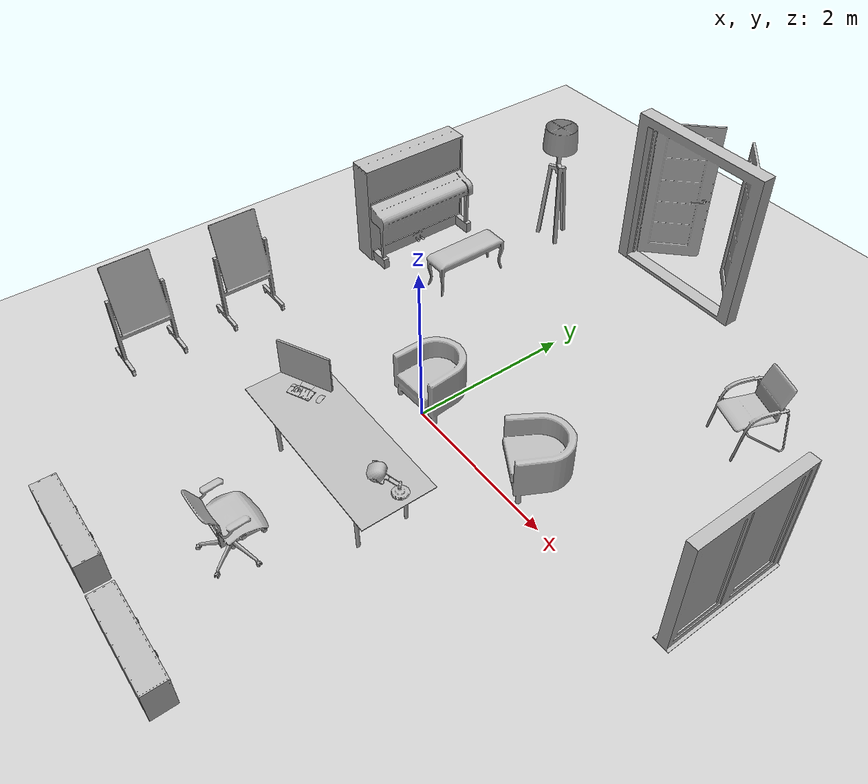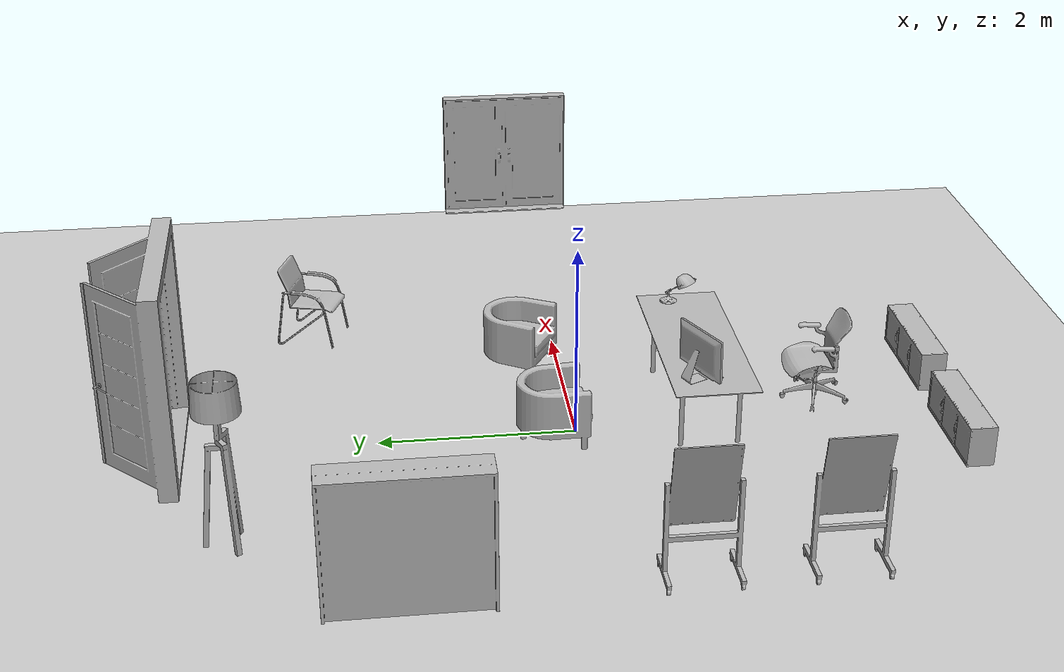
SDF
<sdf version="1.4">
 <world name="default">
  <light name="sun" type="directional">
   <pose>0 0 10 0 -0 0</pose>
   <diffuse>0.8 0.8 0.8 1</diffuse>
   <specular>0.2 0.2 0.2 1</specular>
   <attenuation>
    <range>1000</range>
    <constant>0.9</constant>
    <linear>0.01</linear>
    <quadratic>0.001</quadratic>
   </attenuation>
   <direction>-0.5 0.1 -0.9</direction>
  </light>
  <model name="ground_plane">
   <static>1</static>
   <link name="link">
    <collision name="collision">
     <geometry><plane><normal>0 0 1</normal><size>100 100</size></plane></geometry>
     <surface><friction><ode><mu>100</mu><mu2>50</mu2></ode></friction></surface>
    </collision>
    <visual name="visual">
     <cast_shadows>0</cast_shadows>
     <geometry><plane><normal>0 0 1</normal><size>100 100</size></plane></geometry>
     <material>
      <script><uri>file://media/materials/scripts/gazebo.material</uri><name>Gazebo/Grey</name></script>
     </material>
    </visual>
    <velocity_decay><linear>0</linear><angular>0</angular></velocity_decay>
   </link>
  </model>
  <physics type="ode">
   <max_step_size>0.001</max_step_size>
   <real_time_factor>1</real_time_factor>
   <real_time_update_rate>1000</real_time_update_rate>
   <gravity>0 0 -9.8</gravity>
  </physics>
  <scene><ambient>0.4 0.4 0.4 1</ambient><background>0.7 0.7 0.7 1</background><shadows>1</shadows></scene>
  <spherical_coordinates>
   <surface_model>EARTH_WGS84</surface_model>
   <latitude_deg>0</latitude_deg>
   <longitude_deg>0</longitude_deg>
   <elevation>0</elevation>
   <heading_deg>0</heading_deg>
  </spherical_coordinates>
  <model name="133_0">
   <pose>0.096622 4.01475 0 0 0 -1.5708</pose>
   <static>1</static>
   <link name="link">
    <collision name="collision"><geometry><box><size>0.769999 1.9 2</size></box></geometry></collision>
    <visual name="visual"><geometry><mesh><uri>model://133/133.dae</uri></mesh></geometry></visual>
    <velocity_decay><linear>0</linear><angular>0</angular></velocity_decay>
   </link>
  </model>
  <model name="516_0">
   <pose>0.385873 -2.54415 0.03 0 -0 1.5708</pose>
   <static>1</static>
   <link name="link">
    <collision name="collision"><geometry><box><size>0.680392 0.718166 2</size></box></geometry></collision>
    <visual name="visual"><geometry><mesh><uri>model://516/516.dae</uri></mesh></geometry></visual>
    <velocity_decay><linear>0</linear><angular>0</angular></velocity_decay>
   </link>
  </model>
  <model name="514_0">
   <pose>0.325878 -1.27725 0.03 0 0 -1.5708</pose>
   <static>1</static>
   <link name="link">
    <collision name="collision"><geometry><box><size>0.85 2.25 2</size></box></geometry></collision>
    <visual name="visual"><geometry><mesh><uri>model://514/514.dae</uri></mesh></geometry></visual>
    <velocity_decay><linear>0</linear><angular>0</angular></velocity_decay>
   </link>
  </model>
  <model name="143_0">
   <pose>-2.6927 1.84275 0.03 0 -0 0</pose>
   <static>1</static>
   <link name="link">
    <collision name="collision"><geometry><box><size>0.6 1.52 2</size></box></geometry></collision>
    <visual name="visual"><geometry><mesh><uri>model://143/143.dae</uri></mesh></geometry></visual>
    <velocity_decay><linear>0</linear><angular>0</angular></velocity_decay>
   </link>
  </model>
  <model name="478_0">
   <pose>-1.66129 1.89075 0.03 0 -0 0</pose>
   <static>1</static>
   <link name="link">
    <collision name="collision"><geometry><box><size>0.34 1.03 2</size></box></geometry></collision>
    <visual name="visual"><geometry><mesh><uri>model://478/478.dae</uri></mesh></geometry></visual>
    <velocity_decay><linear>0</linear><angular>0</angular></velocity_decay>
   </link>
  </model>
  <model name="69_0">
   <pose>-0.098819 0.262029 0.03 0 0 -1.5175</pose>
   <static>1</static>
   <link name="link">
    <collision name="collision"><geometry><box><size>0.72 0.7 2</size></box></geometry></collision>
    <visual name="visual"><geometry><mesh><uri>model://69/69.dae</uri></mesh></geometry></visual>
    <velocity_decay><linear>0</linear><angular>0</angular></velocity_decay>
   </link>
  </model>
  <model name="69_1">
   <pose>1.49359 0.446317 0.03 0 0 -2.09483</pose>
   <static>1</static>
   <link name="link">
    <collision name="collision"><geometry><box><size>0.72 0.7 2</size></box></geometry></collision>
    <visual name="visual"><geometry><mesh><uri>model://69/69.dae</uri></mesh></geometry></visual>
    <velocity_decay><linear>0</linear><angular>0</angular></velocity_decay>
   </link>
  </model>
  <model name="387_0">
   <pose>-0.59812 -3.80594 0.03 0 -0 1.5708</pose>
   <static>1</static>
   <link name="link">
    <collision name="collision"><geometry><box><size>0.299626 1.20006 2</size></box></geometry></collision>
    <visual name="visual"><geometry><mesh><uri>model://387/387.dae</uri></mesh></geometry></visual>
    <velocity_decay><linear>0</linear><angular>0</angular></velocity_decay>
   </link>
  </model>
  <model name="387_1">
   <pose>0.949877 -3.82044 0.03 0 -0 1.5708</pose>
   <static>1</static>
   <link name="link">
    <collision name="collision"><geometry><box><size>0.299626 1.20006 2</size></box></geometry></collision>
    <visual name="visual"><geometry><mesh><uri>model://387/387.dae</uri></mesh></geometry></visual>
    <velocity_decay><linear>0</linear><angular>0</angular></velocity_decay>
   </link>
  </model>
  <model name="189_0">
   <pose>-0.442131 -1.15725 0.787651 0 0 -1.12785</pose>
   <static>1</static>
   <link name="link">
    <collision name="collision"><geometry><box><size>0.359507 0.6495 2</size></box></geometry></collision>
    <visual name="visual"><geometry><mesh><uri>model://189/189.dae</uri></mesh></geometry></visual>
    <velocity_decay><linear>0</linear><angular>0</angular></velocity_decay>
   </link>
  </model>
  <model name="518_0">
   <pose>-2.71532 -2.05725 0.03 0 -0 0</pose>
   <static>1</static>
   <link name="link">
    <collision name="collision"><geometry><box><size>0.5 0.7 2</size></box></geometry></collision>
    <visual name="visual"><geometry><mesh><uri>model://518/518.dae</uri></mesh></geometry></visual>
    <velocity_decay><linear>0</linear><angular>0</angular></velocity_decay>
   </link>
  </model>
  <model name="425_0">
   <pose>2.42588 2.62275 0.03 0 0 -1.91545</pose>
   <static>1</static>
   <link name="link">
    <collision name="collision"><geometry><box><size>0.632125 0.610274 2</size></box></geometry></collision>
    <visual name="visual"><geometry><mesh><uri>model://425/425.dae</uri></mesh></geometry></visual>
    <velocity_decay><linear>0</linear><angular>0</angular></velocity_decay>
   </link>
  </model>
  <model name="423_0">
   <pose>1.22588 -1.24125 0.776595 0 0 -2.35619</pose>
   <static>1</static>
   <link name="link">
    <collision name="collision"><geometry><box><size>0.401762 0.233378 2</size></box></geometry></collision>
    <visual name="visual"><geometry><mesh><uri>model://423/423.dae</uri></mesh></geometry></visual>
    <velocity_decay><linear>0</linear><angular>0</angular></velocity_decay>
   </link>
  </model>
  <model name="521_0">
   <pose>-1.67813 3.42675 0.03 0 -0 0</pose>
   <static>1</static>
   <link name="link">
    <collision name="collision"><geometry><box><size>0.45027 0.45027 2</size></box></geometry></collision>
    <visual name="visual"><geometry><mesh><uri>model://521/521.dae</uri></mesh></geometry></visual>
    <velocity_decay><linear>0</linear><angular>0</angular></velocity_decay>
   </link>
  </model>
  <model name="209_0">
   <pose>3.89974 0.31875 0.83 0 -0 3.14159</pose>
   <static>1</static>
   <link name="link">
    <collision name="collision"><geometry><box><size>0.175 1.4 2</size></box></geometry></collision>
    <visual name="visual"><geometry><mesh><uri>model://209/209.dae</uri></mesh></geometry></visual>
    <velocity_decay><linear>0</linear><angular>0</angular></velocity_decay>
   </link>
  </model>
  <model name="518_1">
   <pose>-2.71469 -0.725252 0.03 0 -0 0</pose>
   <static>1</static>
   <link name="link">
    <collision name="collision"><geometry><box><size>0.5 0.7 2</size></box></geometry></collision>
    <visual name="visual"><geometry><mesh><uri>model://518/518.dae</uri></mesh></geometry></visual>
    <velocity_decay><linear>0</linear><angular>0</angular></velocity_decay>
   </link>
  </model>
 </world>
</sdf>
